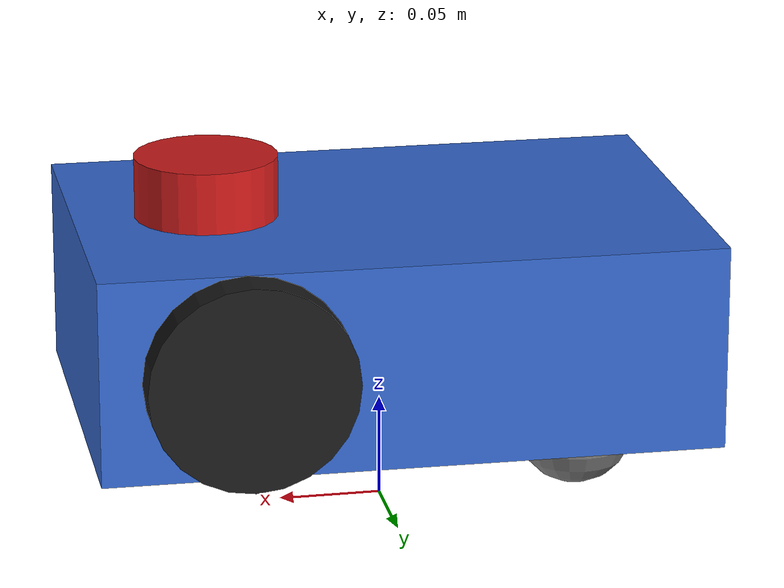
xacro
<?xml version="1.0"?>
<robot name="learning_bot" xmlns:xacro="http://www.ros.org/wiki/xacro">

  <!-- ========== 尺寸参数 ========== -->
  <xacro:property name="chassis_length" value="0.30"/>
  <xacro:property name="chassis_width"  value="0.20"/>
  <xacro:property name="chassis_height" value="0.10"/>
  <xacro:property name="chassis_mass"   value="1.5"/>

  <xacro:property name="wheel_radius"   value="0.05"/>
  <xacro:property name="wheel_width"    value="0.02"/>
  <xacro:property name="wheel_mass"     value="0.1"/>
  <xacro:property name="wheel_xoff"     value="0.08"/>
  <!-- 轮距 = 底盘宽 + 轮宽，控制器 YAML 必须写同一个值 -->
  <xacro:property name="wheel_separation" value="${chassis_width + wheel_width}"/>

  <xacro:property name="caster_radius"  value="0.03"/>
  <xacro:property name="caster_mass"    value="0.05"/>

  <xacro:property name="lidar_radius"   value="0.035"/>
  <xacro:property name="lidar_height"   value="0.03"/>
  <xacro:property name="lidar_mass"     value="0.05"/>

  <!-- ========== 惯量宏 ========== -->
  <xacro:macro name="box_inertia" params="m x y z">
    <inertial>
      <mass value="${m}"/>
      <inertia
        ixx="${m*(y*y+z*z)/12.0}" ixy="0.0" ixz="0.0"
        iyy="${m*(x*x+z*z)/12.0}" iyz="0.0"
        izz="${m*(x*x+y*y)/12.0}"/>
    </inertial>
  </xacro:macro>

  <xacro:macro name="cylinder_inertia" params="m r h">
    <inertial>
      <mass value="${m}"/>
      <inertia
        ixx="${m*(3*r*r+h*h)/12.0}" ixy="0.0" ixz="0.0"
        iyy="${m*(3*r*r+h*h)/12.0}" iyz="0.0"
        izz="${m*r*r/2.0}"/>
    </inertial>
  </xacro:macro>

  <xacro:macro name="sphere_inertia" params="m r">
    <inertial>
      <mass value="${m}"/>
      <inertia
        ixx="${2.0*m*r*r/5.0}" ixy="0.0" ixz="0.0"
        iyy="${2.0*m*r*r/5.0}" iyz="0.0"
        izz="${2.0*m*r*r/5.0}"/>
    </inertial>
  </xacro:macro>

  <!-- ========== 轮子宏 ========== -->
  <xacro:macro name="wheel" params="prefix y_reflect">
    <link name="${prefix}_wheel">
      <visual>
        <origin xyz="0 0 0" rpy="${pi/2} 0 0"/>
        <geometry>
          <cylinder radius="${wheel_radius}" length="${wheel_width}"/>
        </geometry>
        <material name="black"/>
      </visual>
      <collision>
        <origin xyz="0 0 0" rpy="${pi/2} 0 0"/>
        <geometry>
          <cylinder radius="${wheel_radius}" length="${wheel_width}"/>
        </geometry>
      </collision>
      <xacro:cylinder_inertia m="${wheel_mass}" r="${wheel_radius}" h="${wheel_width}"/>
    </link>

    <joint name="${prefix}_wheel_joint" type="continuous">
      <parent link="base_link"/>
      <child link="${prefix}_wheel"/>
      <origin xyz="${wheel_xoff} ${y_reflect*(chassis_width/2.0 + wheel_width/2.0)} ${-(chassis_height/2.0) + wheel_radius}" rpy="0 0 0"/>
      <axis xyz="0 1 0"/>
    </joint>
  </xacro:macro>

  <!-- ========== 材质 ========== -->
  <material name="blue">  <color rgba="0.2 0.4 0.8 1.0"/> </material>
  <material name="black"> <color rgba="0.1 0.1 0.1 1.0"/> </material>
  <material name="red">   <color rgba="0.8 0.1 0.1 1.0"/> </material>
  <material name="grey">  <color rgba="0.5 0.5 0.5 1.0"/> </material>

  <!-- ========== 主体 ========== -->
  <link name="base_footprint"/>

  <joint name="base_joint" type="fixed">
    <parent link="base_footprint"/>
    <child link="base_link"/>
    <origin xyz="0 0 ${wheel_radius + chassis_height/2.0}" rpy="0 0 0"/>
  </joint>

  <link name="base_link">
    <visual>
      <geometry>
        <box size="${chassis_length} ${chassis_width} ${chassis_height}"/>
      </geometry>
      <material name="blue"/>
    </visual>
    <collision>
      <geometry>
        <box size="${chassis_length} ${chassis_width} ${chassis_height}"/>
      </geometry>
    </collision>
    <xacro:box_inertia m="${chassis_mass}" x="${chassis_length}" y="${chassis_width}" z="${chassis_height}"/>
  </link>

  <xacro:wheel prefix="left"  y_reflect="1"/>
  <xacro:wheel prefix="right" y_reflect="-1"/>

  <!-- 万向轮（低摩擦，仿真里负责第三点支撑） -->
  <link name="caster_wheel">
    <visual>
      <geometry><sphere radius="${caster_radius}"/></geometry>
      <material name="grey"/>
    </visual>
    <collision>
      <geometry><sphere radius="${caster_radius}"/></geometry>
    </collision>
    <xacro:sphere_inertia m="${caster_mass}" r="${caster_radius}"/>
  </link>
  <joint name="caster_joint" type="fixed">
    <parent link="base_link"/>
    <child link="caster_wheel"/>
    <origin xyz="${-chassis_length/2.0 + caster_radius + 0.02} 0 ${-(chassis_height/2.0) - (wheel_radius - caster_radius)}" rpy="0 0 0"/>
  </joint>

  <!-- 激光雷达 -->
  <link name="lidar_link">
    <visual>
      <geometry>
        <cylinder radius="${lidar_radius}" length="${lidar_height}"/>
      </geometry>
      <material name="red"/>
    </visual>
    <collision>
      <geometry>
        <cylinder radius="${lidar_radius}" length="${lidar_height}"/>
      </geometry>
    </collision>
    <xacro:cylinder_inertia m="${lidar_mass}" r="${lidar_radius}" h="${lidar_height}"/>
  </link>
  <joint name="lidar_joint" type="fixed">
    <parent link="base_link"/>
    <child link="lidar_link"/>
    <origin xyz="${chassis_length/2.0 - lidar_radius - 0.03} 0 ${chassis_height/2.0 + lidar_height/2.0}" rpy="0 0 0"/>
  </joint>

  <!-- =====================================================================
       A. ros2_control：把两个轮子的速度暴露成可被控制器驱动的接口
       ===================================================================== -->
  <ros2_control name="GazeboSimSystem" type="system">
    <hardware>
      <plugin>gz_ros2_control/GazeboSimSystem</plugin>
    </hardware>
    <joint name="left_wheel_joint">
      <command_interface name="velocity">
        <param name="min">-10</param>
        <param name="max">10</param>
      </command_interface>
      <state_interface name="position"/>
      <state_interface name="velocity"/>
    </joint>
    <joint name="right_wheel_joint">
      <command_interface name="velocity">
        <param name="min">-10</param>
        <param name="max">10</param>
      </command_interface>
      <state_interface name="position"/>
      <state_interface name="velocity"/>
    </joint>
  </ros2_control>

  <gazebo>
    <plugin filename="gz_ros2_control-system" name="gz_ros2_control::GazeboSimROS2ControlPlugin">
      <parameters>$(find learn_gazebo)/config/learnbot_controllers.yaml</parameters>
      <ros>
        <remapping>diff_drive_base_controller/cmd_vel_unstamped:=cmd_vel</remapping>
      </ros>
    </plugin>
  </gazebo>

  <gazebo reference="lidar_link">
    <sensor name="gpu_lidar" type="gpu_lidar">
      <pose>0 0 0 0 0 0</pose>
      <topic>scan</topic>
      <gz_frame_id>lidar_link</gz_frame_id>
      <update_rate>10</update_rate>
      <lidar>
        <scan>
          <horizontal>
            <samples>360</samples>
            <resolution>1</resolution>
            <min_angle>-3.14159</min_angle>
            <max_angle>3.14159</max_angle>
          </horizontal>
        </scan>
        <range>
          <min>0.05</min>
          <max>8.0</max>
          <resolution>0.01</resolution>
        </range>
      </lidar>
      <always_on>true</always_on>
      <visualize>true</visualize>
    </sensor>
  </gazebo>

  <!-- 降低万向轮摩擦，避免干扰差速运动学 -->
  <gazebo reference="caster_wheel">
    <mu1>0.001</mu1>
    <mu2>0.001</mu2>
  </gazebo>

</robot>
